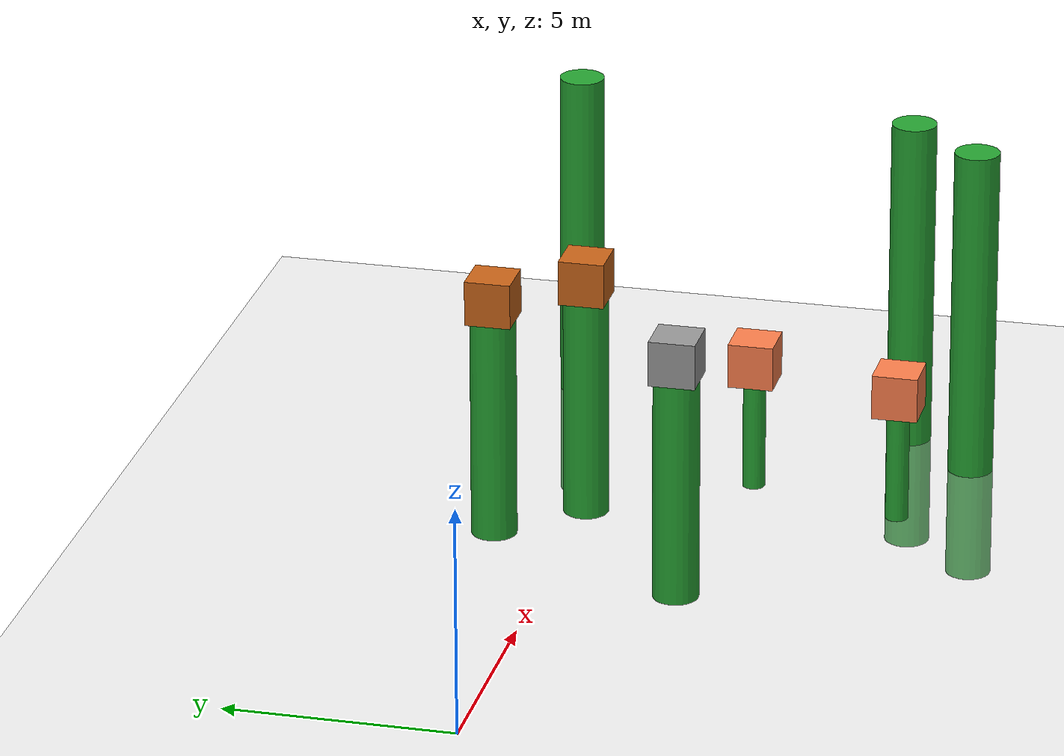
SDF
<sdf version="1.7">
 <world name="default">
  <model name="ground_plane">
   <static>1</static>
   <link name="link">
    <collision name="collision">
     <geometry><plane><normal>0 0 1</normal><size>100 100</size></plane></geometry>
     <surface>
      <contact><collide_bitmask>65535</collide_bitmask></contact>
      <friction><ode><mu>100</mu><mu2>50</mu2></ode></friction>
     </surface>
    </collision>
    <visual name="visual">
     <cast_shadows>0</cast_shadows>
     <geometry><plane><normal>0 0 1</normal><size>100 100</size></plane></geometry>
     <material>
      <script><uri>file://media/materials/scripts/gazebo.material</uri><name>Gazebo/Grey</name></script>
     </material>
    </visual>
   </link>
  </model>
  <model name="unit_cylinder_green_2_clone_clone_16">
   <link name="link">
    <inertial>
     <mass>1</mass>
     <inertia><ixx>0.145833</ixx><ixy>0</ixy><ixz>0</ixz><iyy>0.145833</iyy><iyz>0</iyz><izz>0.125</izz></inertia>
    </inertial>
    <visual name="visual">
     <geometry><cylinder><radius>0.5</radius><length>10</length></cylinder></geometry>
     <material>
      <script><name>Gazebo/Green</name><uri>file://media/materials/scripts/gazebo.material</uri></script>
      <shader type="pixel"><normal_map>__default__</normal_map></shader>
      <ambient>0 1 0.3 1</ambient>
      <diffuse>0.7 0.7 0.7 1</diffuse>
      <specular>0.01 0.01 0.01 1</specular>
      <emissive>0 0 0 1</emissive>
     </material>
    </visual>
    <collision name="collision">
     <geometry><cylinder><radius>0.5</radius><length>5</length></cylinder></geometry>
     <surface>
      <friction>
       <ode><mu>1</mu><mu2>1</mu2><fdir1>0 0 0</fdir1><slip1>0</slip1><slip2>0</slip2></ode>
       <torsional>
        <coefficient>1</coefficient>
        <patch_radius>0</patch_radius>
        <surface_radius>0</surface_radius>
        <use_patch_radius>1</use_patch_radius>
        <ode><slip>0</slip></ode>
       </torsional>
      </friction>
      <bounce><restitution_coefficient>0</restitution_coefficient><threshold>1e+06</threshold></bounce>
      <contact>
       <collide_without_contact>0</collide_without_contact>
       <collide_without_contact_bitmask>1</collide_without_contact_bitmask>
       <collide_bitmask>1</collide_bitmask>
       <ode>
        <soft_cfm>0</soft_cfm>
        <soft_erp>0.2</soft_erp>
        <kp>1e+13</kp>
        <kd>1</kd>
        <max_vel>0.01</max_vel>
        <min_depth>0</min_depth>
       </ode>
       <bullet>
        <split_impulse>1</split_impulse>
        <split_impulse_penetration_threshold>-0.01</split_impulse_penetration_threshold>
        <soft_cfm>0</soft_cfm>
        <soft_erp>0.2</soft_erp>
        <kp>1e+13</kp>
        <kd>1</kd>
       </bullet>
      </contact>
     </surface>
    </collision>
   </link>
   <static>1</static>
   <pose>15.4924 -7.74923 2.5 0 0 -0.000967</pose>
  </model>
  <model name="unit_cylinder_green_2_clone_clone_28_clone_clone_clone">
   <link name="link">
    <inertial>
     <mass>1</mass>
     <inertia><ixx>0.145833</ixx><ixy>0</ixy><ixz>0</ixz><iyy>0.145833</iyy><iyz>0</iyz><izz>0.125</izz></inertia>
    </inertial>
    <visual name="visual">
     <geometry><cylinder><radius>0.5</radius><length>10</length></cylinder></geometry>
     <material>
      <script><name>Gazebo/Green</name><uri>file://media/materials/scripts/gazebo.material</uri></script>
      <shader type="pixel"><normal_map>__default__</normal_map></shader>
      <ambient>0 1 0.3 1</ambient>
      <diffuse>0.7 0.7 0.7 1</diffuse>
      <specular>0.01 0.01 0.01 1</specular>
      <emissive>0 0 0 1</emissive>
     </material>
    </visual>
    <collision name="collision">
     <geometry><cylinder><radius>0.5</radius><length>5</length></cylinder></geometry>
     <surface>
      <friction>
       <ode><mu>1</mu><mu2>1</mu2><fdir1>0 0 0</fdir1><slip1>0</slip1><slip2>0</slip2></ode>
       <torsional>
        <coefficient>1</coefficient>
        <patch_radius>0</patch_radius>
        <surface_radius>0</surface_radius>
        <use_patch_radius>1</use_patch_radius>
        <ode><slip>0</slip></ode>
       </torsional>
      </friction>
      <bounce><restitution_coefficient>0</restitution_coefficient><threshold>1e+06</threshold></bounce>
      <contact>
       <collide_without_contact>0</collide_without_contact>
       <collide_without_contact_bitmask>1</collide_without_contact_bitmask>
       <collide_bitmask>1</collide_bitmask>
       <ode>
        <soft_cfm>0</soft_cfm>
        <soft_erp>0.2</soft_erp>
        <kp>1e+13</kp>
        <kd>1</kd>
        <max_vel>0.01</max_vel>
        <min_depth>0</min_depth>
       </ode>
       <bullet>
        <split_impulse>1</split_impulse>
        <split_impulse_penetration_threshold>-0.01</split_impulse_penetration_threshold>
        <soft_cfm>0</soft_cfm>
        <soft_erp>0.2</soft_erp>
        <kp>1e+13</kp>
        <kd>1</kd>
       </bullet>
      </contact>
     </surface>
    </collision>
   </link>
   <static>1</static>
   <pose>18.0173 1.6777 2.5 0 0 -0.000925</pose>
  </model>
  <model name="unit_cylinder_green_2_clone_clone_28_clone_clone_clone_clone">
   <link name="link">
    <inertial>
     <mass>1</mass>
     <inertia><ixx>0.145833</ixx><ixy>0</ixy><ixz>0</ixz><iyy>0.145833</iyy><iyz>0</iyz><izz>0.125</izz></inertia>
    </inertial>
    <visual name="visual">
     <geometry><cylinder><radius>0.5</radius><length>10</length></cylinder></geometry>
     <material>
      <script><name>Gazebo/Green</name><uri>file://media/materials/scripts/gazebo.material</uri></script>
      <shader type="pixel"><normal_map>__default__</normal_map></shader>
      <ambient>0 1 0.3 1</ambient>
      <diffuse>0.7 0.7 0.7 1</diffuse>
      <specular>0.01 0.01 0.01 1</specular>
      <emissive>0 0 0 1</emissive>
     </material>
    </visual>
    <collision name="collision">
     <geometry><cylinder><radius>0.5</radius><length>5</length></cylinder></geometry>
     <surface>
      <friction>
       <ode><mu>1</mu><mu2>1</mu2><fdir1>0 0 0</fdir1><slip1>0</slip1><slip2>0</slip2></ode>
       <torsional>
        <coefficient>1</coefficient>
        <patch_radius>0</patch_radius>
        <surface_radius>0</surface_radius>
        <use_patch_radius>1</use_patch_radius>
        <ode><slip>0</slip></ode>
       </torsional>
      </friction>
      <bounce><restitution_coefficient>0</restitution_coefficient><threshold>1e+06</threshold></bounce>
      <contact>
       <collide_without_contact>0</collide_without_contact>
       <collide_without_contact_bitmask>1</collide_without_contact_bitmask>
       <collide_bitmask>1</collide_bitmask>
       <ode>
        <soft_cfm>0</soft_cfm>
        <soft_erp>0.2</soft_erp>
        <kp>1e+13</kp>
        <kd>1</kd>
        <max_vel>0.01</max_vel>
        <min_depth>0</min_depth>
       </ode>
       <bullet>
        <split_impulse>1</split_impulse>
        <split_impulse_penetration_threshold>-0.01</split_impulse_penetration_threshold>
        <soft_cfm>0</soft_cfm>
        <soft_erp>0.2</soft_erp>
        <kp>1e+13</kp>
        <kd>1</kd>
       </bullet>
      </contact>
     </surface>
    </collision>
   </link>
   <static>1</static>
   <pose>16.8891 -6.09326 2.5 0 0 -0.000909</pose>
  </model>
  <model name="unit_cylinder_green_2_clone_clone_3_clone_0_clone">
   <link name="link">
    <inertial>
     <mass>1</mass>
     <inertia><ixx>0.145833</ixx><ixy>0</ixy><ixz>0</ixz><iyy>0.145833</iyy><iyz>0</iyz><izz>0.125</izz></inertia>
    </inertial>
    <visual name="visual">
     <geometry><cylinder><radius>0.5</radius><length>5</length></cylinder></geometry>
     <material>
      <script><name>Gazebo/Green</name><uri>file://media/materials/scripts/gazebo.material</uri></script>
      <shader type="pixel"><normal_map>__default__</normal_map></shader>
      <ambient>0 1 0.3 1</ambient>
      <diffuse>0.7 0.7 0.7 1</diffuse>
      <specular>0.01 0.01 0.01 1</specular>
      <emissive>0 0 0 1</emissive>
     </material>
    </visual>
    <collision name="collision">
     <geometry><cylinder><radius>0.5</radius><length>5</length></cylinder></geometry>
     <surface>
      <friction>
       <ode><mu>1</mu><mu2>1</mu2><fdir1>0 0 0</fdir1><slip1>0</slip1><slip2>0</slip2></ode>
       <torsional>
        <coefficient>1</coefficient>
        <patch_radius>0</patch_radius>
        <surface_radius>0</surface_radius>
        <use_patch_radius>1</use_patch_radius>
        <ode><slip>0</slip></ode>
       </torsional>
      </friction>
      <bounce><restitution_coefficient>0</restitution_coefficient><threshold>1e+06</threshold></bounce>
      <contact>
       <collide_without_contact>0</collide_without_contact>
       <collide_without_contact_bitmask>1</collide_without_contact_bitmask>
       <collide_bitmask>1</collide_bitmask>
       <ode>
        <soft_cfm>0</soft_cfm>
        <soft_erp>0.2</soft_erp>
        <kp>1e+13</kp>
        <kd>1</kd>
        <max_vel>0.01</max_vel>
        <min_depth>0</min_depth>
       </ode>
       <bullet>
        <split_impulse>1</split_impulse>
        <split_impulse_penetration_threshold>-0.01</split_impulse_penetration_threshold>
        <soft_cfm>0</soft_cfm>
        <soft_erp>0.2</soft_erp>
        <kp>1e+13</kp>
        <kd>1</kd>
       </bullet>
      </contact>
     </surface>
    </collision>
   </link>
   <link name="link_3">
    <inertial>
     <mass>1</mass>
     <inertia>
      <ixx>0.166667</ixx>
      <ixy>0</ixy>
      <ixz>0</ixz>
      <iyy>0.166667</iyy>
      <iyz>0</iyz>
      <izz>0.166667</izz>
     </inertia>
    </inertial>
    <pose>0 0 3 0 -0 0.000935</pose>
    <visual name="visual">
     <geometry><box><size>1 1 1</size></box></geometry>
     <material>
      <lighting>1</lighting>
      <script><uri>file://media/materials/scripts/gazebo.material</uri><name>Gazebo/Grey</name></script>
      <shader type="pixel"><normal_map>__default__</normal_map></shader>
      <ambient>0.3 0.3 0.3 1</ambient>
      <diffuse>0.7 0.7 0.7 1</diffuse>
      <specular>0.01 0.01 0.01 1</specular>
      <emissive>0 0 0 1</emissive>
     </material>
    </visual>
    <collision name="collision">
     <geometry><box><size>1 1 1</size></box></geometry>
     <surface>
      <friction>
       <ode><mu>1</mu><mu2>1</mu2><fdir1>0 0 0</fdir1><slip1>0</slip1><slip2>0</slip2></ode>
       <torsional>
        <coefficient>1</coefficient>
        <patch_radius>0</patch_radius>
        <surface_radius>0</surface_radius>
        <use_patch_radius>1</use_patch_radius>
        <ode><slip>0</slip></ode>
       </torsional>
      </friction>
      <bounce><restitution_coefficient>0</restitution_coefficient><threshold>1e+06</threshold></bounce>
      <contact>
       <collide_without_contact>0</collide_without_contact>
       <collide_without_contact_bitmask>1</collide_without_contact_bitmask>
       <collide_bitmask>1</collide_bitmask>
       <ode>
        <soft_cfm>0</soft_cfm>
        <soft_erp>0.2</soft_erp>
        <kp>1e+13</kp>
        <kd>1</kd>
        <max_vel>0.01</max_vel>
        <min_depth>0</min_depth>
       </ode>
       <bullet>
        <split_impulse>1</split_impulse>
        <split_impulse_penetration_threshold>-0.01</split_impulse_penetration_threshold>
        <soft_cfm>0</soft_cfm>
        <soft_erp>0.2</soft_erp>
        <kp>1e+13</kp>
        <kd>1</kd>
       </bullet>
      </contact>
     </surface>
    </collision>
   </link>
   <static>1</static>
   <pose>7.4954 -2.86091 2.49999 0 0 -0.000935</pose>
  </model>
  <model name="unit_cylinder_green_2_clone_clone_3_clone_0_clone_0_clone_0">
   <link name="link">
    <inertial>
     <mass>1</mass>
     <inertia><ixx>0.145833</ixx><ixy>0</ixy><ixz>0</ixz><iyy>0.145833</iyy><iyz>0</iyz><izz>0.125</izz></inertia>
    </inertial>
    <visual name="visual">
     <geometry><cylinder><radius>0.5</radius><length>5</length></cylinder></geometry>
     <material>
      <script><name>Gazebo/Green</name><uri>file://media/materials/scripts/gazebo.material</uri></script>
      <shader type="pixel"><normal_map>__default__</normal_map></shader>
      <ambient>0 1 0.3 1</ambient>
      <diffuse>0.7 0.7 0.7 1</diffuse>
      <specular>0.01 0.01 0.01 1</specular>
      <emissive>0 0 0 1</emissive>
     </material>
    </visual>
    <collision name="collision">
     <geometry><cylinder><radius>0.5</radius><length>5</length></cylinder></geometry>
     <surface>
      <friction>
       <ode><mu>1</mu><mu2>1</mu2><fdir1>0 0 0</fdir1><slip1>0</slip1><slip2>0</slip2></ode>
       <torsional>
        <coefficient>1</coefficient>
        <patch_radius>0</patch_radius>
        <surface_radius>0</surface_radius>
        <use_patch_radius>1</use_patch_radius>
        <ode><slip>0</slip></ode>
       </torsional>
      </friction>
      <bounce><restitution_coefficient>0</restitution_coefficient><threshold>1e+06</threshold></bounce>
      <contact>
       <collide_without_contact>0</collide_without_contact>
       <collide_without_contact_bitmask>1</collide_without_contact_bitmask>
       <collide_bitmask>1</collide_bitmask>
       <ode>
        <soft_cfm>0</soft_cfm>
        <soft_erp>0.2</soft_erp>
        <kp>1e+13</kp>
        <kd>1</kd>
        <max_vel>0.01</max_vel>
        <min_depth>0</min_depth>
       </ode>
       <bullet>
        <split_impulse>1</split_impulse>
        <split_impulse_penetration_threshold>-0.01</split_impulse_penetration_threshold>
        <soft_cfm>0</soft_cfm>
        <soft_erp>0.2</soft_erp>
        <kp>1e+13</kp>
        <kd>1</kd>
       </bullet>
      </contact>
     </surface>
    </collision>
   </link>
   <link name="link_3">
    <inertial>
     <mass>1</mass>
     <inertia>
      <ixx>0.166667</ixx>
      <ixy>0</ixy>
      <ixz>0</ixz>
      <iyy>0.166667</iyy>
      <iyz>0</iyz>
      <izz>0.166667</izz>
     </inertia>
    </inertial>
    <pose>0 0 3 0 -0 0.000935</pose>
    <visual name="visual">
     <geometry><box><size>1 1 1</size></box></geometry>
     <material>
      <lighting>1</lighting>
      <script><uri>file://media/materials/scripts/gazebo.material</uri><name>Gazebo/Grey</name></script>
      <shader type="pixel"><normal_map>__default__</normal_map></shader>
      <ambient>0.8 0.4 0.1 1</ambient>
      <diffuse>0.7 0.7 0.7 1</diffuse>
      <specular>0.01 0.01 0.01 1</specular>
      <emissive>0 0 0 1</emissive>
     </material>
    </visual>
    <collision name="collision">
     <geometry><box><size>1 1 1</size></box></geometry>
     <surface>
      <friction>
       <ode><mu>1</mu><mu2>1</mu2><fdir1>0 0 0</fdir1><slip1>0</slip1><slip2>0</slip2></ode>
       <torsional>
        <coefficient>1</coefficient>
        <patch_radius>0</patch_radius>
        <surface_radius>0</surface_radius>
        <use_patch_radius>1</use_patch_radius>
        <ode><slip>0</slip></ode>
       </torsional>
      </friction>
      <bounce><restitution_coefficient>0</restitution_coefficient><threshold>1e+06</threshold></bounce>
      <contact>
       <collide_without_contact>0</collide_without_contact>
       <collide_without_contact_bitmask>1</collide_without_contact_bitmask>
       <collide_bitmask>1</collide_bitmask>
       <ode>
        <soft_cfm>0</soft_cfm>
        <soft_erp>0.2</soft_erp>
        <kp>1e+13</kp>
        <kd>1</kd>
        <max_vel>0.01</max_vel>
        <min_depth>0</min_depth>
       </ode>
       <bullet>
        <split_impulse>1</split_impulse>
        <split_impulse_penetration_threshold>-0.01</split_impulse_penetration_threshold>
        <soft_cfm>0</soft_cfm>
        <soft_erp>0.2</soft_erp>
        <kp>1e+13</kp>
        <kd>1</kd>
       </bullet>
      </contact>
     </surface>
    </collision>
   </link>
   <static>1</static>
   <pose>9.78486 1.68293 2.49999 0 0 -0.000935</pose>
  </model>
  <model name="unit_cylinder_green_2_clone_clone_3_clone_0_clone_0_clone_29">
   <link name="link">
    <inertial>
     <mass>1</mass>
     <inertia><ixx>0.145833</ixx><ixy>0</ixy><ixz>0</ixz><iyy>0.145833</iyy><iyz>0</iyz><izz>0.125</izz></inertia>
    </inertial>
    <visual name="visual">
     <geometry><cylinder><radius>0.5</radius><length>5</length></cylinder></geometry>
     <material>
      <script><name>Gazebo/Green</name><uri>file://media/materials/scripts/gazebo.material</uri></script>
      <shader type="pixel"><normal_map>__default__</normal_map></shader>
      <ambient>0 1 0.3 1</ambient>
      <diffuse>0.7 0.7 0.7 1</diffuse>
      <specular>0.01 0.01 0.01 1</specular>
      <emissive>0 0 0 1</emissive>
     </material>
    </visual>
    <collision name="collision">
     <geometry><cylinder><radius>0.5</radius><length>5</length></cylinder></geometry>
     <surface>
      <friction>
       <ode><mu>1</mu><mu2>1</mu2><fdir1>0 0 0</fdir1><slip1>0</slip1><slip2>0</slip2></ode>
       <torsional>
        <coefficient>1</coefficient>
        <patch_radius>0</patch_radius>
        <surface_radius>0</surface_radius>
        <use_patch_radius>1</use_patch_radius>
        <ode><slip>0</slip></ode>
       </torsional>
      </friction>
      <bounce><restitution_coefficient>0</restitution_coefficient><threshold>1e+06</threshold></bounce>
      <contact>
       <collide_without_contact>0</collide_without_contact>
       <collide_without_contact_bitmask>1</collide_without_contact_bitmask>
       <collide_bitmask>1</collide_bitmask>
       <ode>
        <soft_cfm>0</soft_cfm>
        <soft_erp>0.2</soft_erp>
        <kp>1e+13</kp>
        <kd>1</kd>
        <max_vel>0.01</max_vel>
        <min_depth>0</min_depth>
       </ode>
       <bullet>
        <split_impulse>1</split_impulse>
        <split_impulse_penetration_threshold>-0.01</split_impulse_penetration_threshold>
        <soft_cfm>0</soft_cfm>
        <soft_erp>0.2</soft_erp>
        <kp>1e+13</kp>
        <kd>1</kd>
       </bullet>
      </contact>
     </surface>
    </collision>
   </link>
   <link name="link_3">
    <inertial>
     <mass>1</mass>
     <inertia>
      <ixx>0.166667</ixx>
      <ixy>0</ixy>
      <ixz>0</ixz>
      <iyy>0.166667</iyy>
      <iyz>0</iyz>
      <izz>0.166667</izz>
     </inertia>
    </inertial>
    <pose>0 0 3 0 -0 0.000935</pose>
    <visual name="visual">
     <geometry><box><size>1 1 1</size></box></geometry>
     <material>
      <lighting>1</lighting>
      <script><uri>file://media/materials/scripts/gazebo.material</uri><name>Gazebo/Grey</name></script>
      <shader type="pixel"><normal_map>__default__</normal_map></shader>
      <ambient>0.8 0.4 0.1 1</ambient>
      <diffuse>0.7 0.7 0.7 1</diffuse>
      <specular>0.01 0.01 0.01 1</specular>
      <emissive>0 0 0 1</emissive>
     </material>
    </visual>
    <collision name="collision">
     <geometry><box><size>1 1 1</size></box></geometry>
     <surface>
      <friction>
       <ode><mu>1</mu><mu2>1</mu2><fdir1>0 0 0</fdir1><slip1>0</slip1><slip2>0</slip2></ode>
       <torsional>
        <coefficient>1</coefficient>
        <patch_radius>0</patch_radius>
        <surface_radius>0</surface_radius>
        <use_patch_radius>1</use_patch_radius>
        <ode><slip>0</slip></ode>
       </torsional>
      </friction>
      <bounce><restitution_coefficient>0</restitution_coefficient><threshold>1e+06</threshold></bounce>
      <contact>
       <collide_without_contact>0</collide_without_contact>
       <collide_without_contact_bitmask>1</collide_without_contact_bitmask>
       <collide_bitmask>1</collide_bitmask>
       <ode>
        <soft_cfm>0</soft_cfm>
        <soft_erp>0.2</soft_erp>
        <kp>1e+13</kp>
        <kd>1</kd>
        <max_vel>0.01</max_vel>
        <min_depth>0</min_depth>
       </ode>
       <bullet>
        <split_impulse>1</split_impulse>
        <split_impulse_penetration_threshold>-0.01</split_impulse_penetration_threshold>
        <soft_cfm>0</soft_cfm>
        <soft_erp>0.2</soft_erp>
        <kp>1e+13</kp>
        <kd>1</kd>
       </bullet>
      </contact>
     </surface>
    </collision>
   </link>
   <static>1</static>
   <pose>11.354 0.007722 2.49999 0 0 -0.000935</pose>
  </model>
  <model name="unit_cylinder_green_2_clone_clone_3_clone_0_clone_0_clone_43">
   <link name="link">
    <inertial>
     <mass>1</mass>
     <inertia><ixx>0.145833</ixx><ixy>0</ixy><ixz>0</ixz><iyy>0.145833</iyy><iyz>0</iyz><izz>0.125</izz></inertia>
    </inertial>
    <pose>0 0 -1.25 0 -0 0</pose>
    <visual name="visual">
     <geometry><cylinder><radius>0.25</radius><length>2.5</length></cylinder></geometry>
     <material>
      <script><name>Gazebo/Green</name><uri>file://media/materials/scripts/gazebo.material</uri></script>
      <shader type="pixel"><normal_map>__default__</normal_map></shader>
      <ambient>0 1 0.3 1</ambient>
      <diffuse>0.7 0.7 0.7 1</diffuse>
      <specular>0.01 0.01 0.01 1</specular>
      <emissive>0 0 0 1</emissive>
     </material>
    </visual>
    <collision name="collision">
     <geometry><cylinder><radius>0.5</radius><length>5</length></cylinder></geometry>
     <surface>
      <friction>
       <ode><mu>1</mu><mu2>1</mu2><fdir1>0 0 0</fdir1><slip1>0</slip1><slip2>0</slip2></ode>
       <torsional>
        <coefficient>1</coefficient>
        <patch_radius>0</patch_radius>
        <surface_radius>0</surface_radius>
        <use_patch_radius>1</use_patch_radius>
        <ode><slip>0</slip></ode>
       </torsional>
      </friction>
      <bounce><restitution_coefficient>0</restitution_coefficient><threshold>1e+06</threshold></bounce>
      <contact>
       <collide_without_contact>0</collide_without_contact>
       <collide_without_contact_bitmask>1</collide_without_contact_bitmask>
       <collide_bitmask>1</collide_bitmask>
       <ode>
        <soft_cfm>0</soft_cfm>
        <soft_erp>0.2</soft_erp>
        <kp>1e+13</kp>
        <kd>1</kd>
        <max_vel>0.01</max_vel>
        <min_depth>0</min_depth>
       </ode>
       <bullet>
        <split_impulse>1</split_impulse>
        <split_impulse_penetration_threshold>-0.01</split_impulse_penetration_threshold>
        <soft_cfm>0</soft_cfm>
        <soft_erp>0.2</soft_erp>
        <kp>1e+13</kp>
        <kd>1</kd>
       </bullet>
      </contact>
     </surface>
    </collision>
   </link>
   <link name="link_3">
    <inertial>
     <mass>1</mass>
     <inertia>
      <ixx>0.166667</ixx>
      <ixy>0</ixy>
      <ixz>0</ixz>
      <iyy>0.166667</iyy>
      <iyz>0</iyz>
      <izz>0.166667</izz>
     </inertia>
    </inertial>
    <pose>0 0 0.5 0 -0 0.000935</pose>
    <visual name="visual">
     <geometry><box><size>1 1 1</size></box></geometry>
     <material>
      <lighting>1</lighting>
      <script><uri>file://media/materials/scripts/gazebo.material</uri><name>Gazebo/Grey</name></script>
      <shader type="pixel"><normal_map>__default__</normal_map></shader>
      <ambient>1 0.5 0.3 1</ambient>
      <diffuse>0.7 0.7 0.7 1</diffuse>
      <specular>0.01 0.01 0.01 1</specular>
      <emissive>0 0 0 1</emissive>
     </material>
    </visual>
    <collision name="collision">
     <geometry><box><size>1 1 1</size></box></geometry>
     <surface>
      <friction>
       <ode><mu>1</mu><mu2>1</mu2><fdir1>0 0 0</fdir1><slip1>0</slip1><slip2>0</slip2></ode>
       <torsional>
        <coefficient>1</coefficient>
        <patch_radius>0</patch_radius>
        <surface_radius>0</surface_radius>
        <use_patch_radius>1</use_patch_radius>
        <ode><slip>0</slip></ode>
       </torsional>
      </friction>
      <bounce><restitution_coefficient>0</restitution_coefficient><threshold>1e+06</threshold></bounce>
      <contact>
       <collide_without_contact>0</collide_without_contact>
       <collide_without_contact_bitmask>1</collide_without_contact_bitmask>
       <collide_bitmask>1</collide_bitmask>
       <ode>
        <soft_cfm>0</soft_cfm>
        <soft_erp>0.2</soft_erp>
        <kp>1e+13</kp>
        <kd>1</kd>
        <max_vel>0.01</max_vel>
        <min_depth>0</min_depth>
       </ode>
       <bullet>
        <split_impulse>1</split_impulse>
        <split_impulse_penetration_threshold>-0.01</split_impulse_penetration_threshold>
        <soft_cfm>0</soft_cfm>
        <soft_erp>0.2</soft_erp>
        <kp>1e+13</kp>
        <kd>1</kd>
       </bullet>
      </contact>
     </surface>
    </collision>
   </link>
   <static>1</static>
   <pose>13.4999 -3.27391 2.49999 0 0 -0.000935</pose>
  </model>
  <model name="unit_cylinder_green_2_clone_clone_3_clone_0_clone_0_clone_73">
   <link name="link">
    <inertial>
     <mass>1</mass>
     <inertia><ixx>0.145833</ixx><ixy>0</ixy><ixz>0</ixz><iyy>0.145833</iyy><iyz>0</iyz><izz>0.125</izz></inertia>
    </inertial>
    <pose>0 0 -1.25 0 -0 0</pose>
    <visual name="visual">
     <geometry><cylinder><radius>0.25</radius><length>2.5</length></cylinder></geometry>
     <material>
      <script><name>Gazebo/Green</name><uri>file://media/materials/scripts/gazebo.material</uri></script>
      <shader type="pixel"><normal_map>__default__</normal_map></shader>
      <ambient>0 1 0.3 1</ambient>
      <diffuse>0.7 0.7 0.7 1</diffuse>
      <specular>0.01 0.01 0.01 1</specular>
      <emissive>0 0 0 1</emissive>
     </material>
    </visual>
    <collision name="collision">
     <geometry><cylinder><radius>0.5</radius><length>5</length></cylinder></geometry>
     <surface>
      <friction>
       <ode><mu>1</mu><mu2>1</mu2><fdir1>0 0 0</fdir1><slip1>0</slip1><slip2>0</slip2></ode>
       <torsional>
        <coefficient>1</coefficient>
        <patch_radius>0</patch_radius>
        <surface_radius>0</surface_radius>
        <use_patch_radius>1</use_patch_radius>
        <ode><slip>0</slip></ode>
       </torsional>
      </friction>
      <bounce><restitution_coefficient>0</restitution_coefficient><threshold>1e+06</threshold></bounce>
      <contact>
       <collide_without_contact>0</collide_without_contact>
       <collide_without_contact_bitmask>1</collide_without_contact_bitmask>
       <collide_bitmask>1</collide_bitmask>
       <ode>
        <soft_cfm>0</soft_cfm>
        <soft_erp>0.2</soft_erp>
        <kp>1e+13</kp>
        <kd>1</kd>
        <max_vel>0.01</max_vel>
        <min_depth>0</min_depth>
       </ode>
       <bullet>
        <split_impulse>1</split_impulse>
        <split_impulse_penetration_threshold>-0.01</split_impulse_penetration_threshold>
        <soft_cfm>0</soft_cfm>
        <soft_erp>0.2</soft_erp>
        <kp>1e+13</kp>
        <kd>1</kd>
       </bullet>
      </contact>
     </surface>
    </collision>
   </link>
   <link name="link_3">
    <inertial>
     <mass>1</mass>
     <inertia>
      <ixx>0.166667</ixx>
      <ixy>0</ixy>
      <ixz>0</ixz>
      <iyy>0.166667</iyy>
      <iyz>0</iyz>
      <izz>0.166667</izz>
     </inertia>
    </inertial>
    <pose>0 0 0.5 0 -0 0.000935</pose>
    <visual name="visual">
     <geometry><box><size>1 1 1</size></box></geometry>
     <material>
      <lighting>1</lighting>
      <script><uri>file://media/materials/scripts/gazebo.material</uri><name>Gazebo/Grey</name></script>
      <shader type="pixel"><normal_map>__default__</normal_map></shader>
      <ambient>1 0.5 0.3 1</ambient>
      <diffuse>0.7 0.7 0.7 1</diffuse>
      <specular>0.01 0.01 0.01 1</specular>
      <emissive>0 0 0 1</emissive>
     </material>
    </visual>
    <collision name="collision">
     <geometry><box><size>1 1 1</size></box></geometry>
     <surface>
      <friction>
       <ode><mu>1</mu><mu2>1</mu2><fdir1>0 0 0</fdir1><slip1>0</slip1><slip2>0</slip2></ode>
       <torsional>
        <coefficient>1</coefficient>
        <patch_radius>0</patch_radius>
        <surface_radius>0</surface_radius>
        <use_patch_radius>1</use_patch_radius>
        <ode><slip>0</slip></ode>
       </torsional>
      </friction>
      <bounce><restitution_coefficient>0</restitution_coefficient><threshold>1e+06</threshold></bounce>
      <contact>
       <collide_without_contact>0</collide_without_contact>
       <collide_without_contact_bitmask>1</collide_without_contact_bitmask>
       <collide_bitmask>1</collide_bitmask>
       <ode>
        <soft_cfm>0</soft_cfm>
        <soft_erp>0.2</soft_erp>
        <kp>1e+13</kp>
        <kd>1</kd>
        <max_vel>0.01</max_vel>
        <min_depth>0</min_depth>
       </ode>
       <bullet>
        <split_impulse>1</split_impulse>
        <split_impulse_penetration_threshold>-0.01</split_impulse_penetration_threshold>
        <soft_cfm>0</soft_cfm>
        <soft_erp>0.2</soft_erp>
        <kp>1e+13</kp>
        <kd>1</kd>
       </bullet>
      </contact>
     </surface>
    </collision>
   </link>
   <static>1</static>
   <pose>12.5272 -6.66074 2.49999 0 0 -0.000935</pose>
  </model>
 </world>
</sdf>
